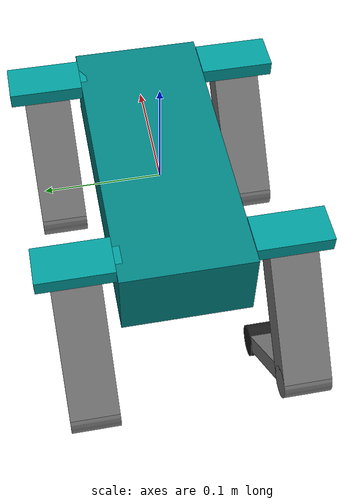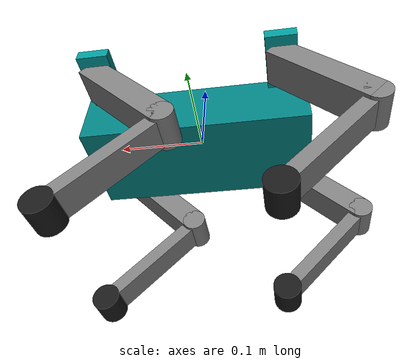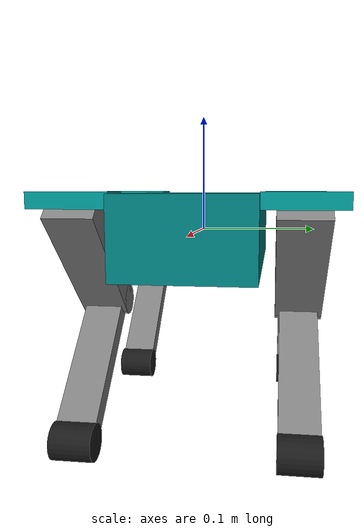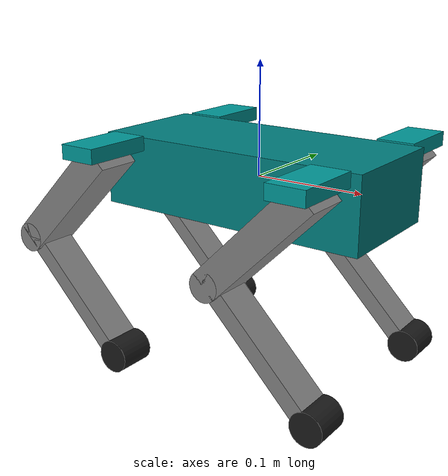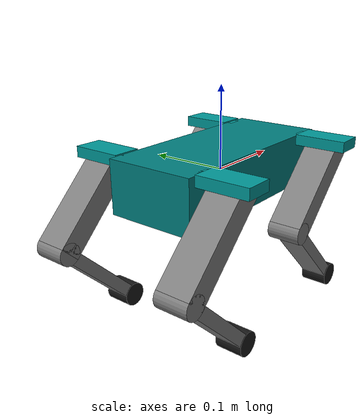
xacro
<?xml version="1.0"?>
<robot name="sparke" xmlns:xacro="http://ros.org/wiki/xacro">
	<!-- Constants -->
  <xacro:property name="base_length" value="0.254"/>
	<xacro:property name="base_width" value="0.11"/>
  <xacro:property name="base_height" value="0.065"/>

  <xacro:property name="shoulder_length" value="0.034"/>
	<xacro:property name="shoulder_width" value="0.0635"/>
  <xacro:property name="shoulder_height" value="0.013"/>

  <xacro:property name="leg_length" value="0.125"/>
	<xacro:property name="leg_width" value="0.040"/>
  <xacro:property name="leg_height" value="0.027"/>

  <xacro:property name="ankle_radius" value="0.0135"/>
	<xacro:property name="ankle_width" value="0.040"/>

  <xacro:property name="wrist_length" value="0.135"/>
	<xacro:property name="wrist_width" value="0.0325"/>
  <xacro:property name="wrist_height" value="0.015"/>

  <xacro:property name="foot_radius" value="0.015"/>
	<xacro:property name="foot_width" value="0.0325"/>

  <!-- Define intertial property macros  -->
  <xacro:macro name="box_inertia" params="m w h d">
    <inertial>
      <origin xyz="0 0 0" rpy="${pi/2} 0 ${pi/2}"/>
      <mass value="${m}"/>
      <inertia ixx="${(m/12) * (h*h + d*d)}" ixy="0.0" ixz="0.0" iyy="${(m/12) * (w*w + d*d)}" iyz="0.0" izz="${(m/12) * (w*w + h*h)}"/>
    </inertial>
  </xacro:macro>

  <xacro:macro name="cylinder_inertia" params="m r h">
    <inertial>
      <origin xyz="0 0 0" rpy="${pi/2} 0 0" />
      <mass value="${m}"/>
      <inertia ixx="${(m/12) * (3*r*r + h*h)}" ixy = "0" ixz = "0" iyy="${(m/12) * (3*r*r + h*h)}" iyz = "0" izz="${(m/2) * (r*r)}"/>
    </inertial>
  </xacro:macro>

  <xacro:macro name="sphere_inertia" params="m r">
    <inertial>
      <mass value="${m}"/>
      <inertia ixx="${(2/5) * m * (r*r)}" ixy="0.0" ixz="0.0" iyy="${(2/5) * m * (r*r)}" iyz="0.0" izz="${(2/5) * m * (r*r)}"/>
    </inertial>
  </xacro:macro>

	<!-- Robot Base -->
  <link name="base_link">
    <visual>
      <geometry>
        <box size="${base_length} ${base_width} ${base_height}"/>
      </geometry>
      <material name="Body">
        <color rgba="0 0.5 0.5 1"/>
      </material>
    </visual>

    <collision>
      <geometry>
        <box size="${base_length} ${base_width} ${base_height}"/>
      </geometry>
    </collision>

    <inertial>
      <origin xyz="0 0 0"/>
      <mass value="2.0"/>
      <inertia ixx="0.016833333333333332" ixy="0.0" ixz="0.0" iyy="0.04448333333333333" iyz="0.0" izz="0.055683333333333335"/>
    </inertial>
  </link>

	<!-- Robot Footprint -->
  <link name="base_footprint"/>

  <joint name="base_joint" type="fixed">
    <parent link="base_footprint"/>
    <child link="base_link"/>
    <origin xyz="0.0 0.0 0.0" rpy="0 0 0"/>
  </joint>

  <!-- Shoulders -->
  <xacro:macro name="shoulder" params="prefix x_reflect y_reflect x_pos y_pos z_pos">
    <link name="${prefix}_hip_link">
      <visual>
        <origin xyz="0 0 0" rpy="0 0 0"/>
        <geometry>
          <box size="${shoulder_length/2} ${(shoulder_width-leg_width)/2} 0.01"/>
        </geometry>
        <material name="hip">
          <color rgba="0 0.6 0.6 1.0"/>
        </material>
      </visual>

      <collision>
        <geometry>
          <box size="${shoulder_length/2} ${(shoulder_width-leg_width)/2} 0.01"/>
        </geometry>
      </collision>

      <inertial>
        <mass value="0.25"/>
        <inertia ixx="0.00048541666666666666" ixy="0.0" ixz="0.0" iyy="0.0006134166666666667" iyz="0.0" izz="0.0003946666666666667"/>
      </inertial>

    </link>

    <joint name="${prefix}_hip_joint" type="revolute">
      <parent link="base_link"/>
      <child link="${prefix}_hip_link"/>
      <origin xyz="${(x_pos) * x_reflect} ${(y_pos) * y_reflect} ${z_pos-0.005}" rpy="0 0 0"/>
      <axis xyz="1 0 0"/>
      <limit effort="1000000" lower="-3.141592653589793" upper="3.141592653589793" velocity="1.5"/>

    </joint>

    <link name="${prefix}_shoulder_link">
      <visual>
        <origin xyz="0 0 0" rpy="0 0 0"/>
        <geometry>
            <box size="${shoulder_length} ${shoulder_width} ${shoulder_height}"/>
        </geometry>
        <material name="Shoulder">
          <color rgba="0 0.6 0.6 0.0"/>
        </material>
      </visual>

      <collision>
        <geometry>
          <box size="${shoulder_length} ${shoulder_width} ${shoulder_height}"/>
        </geometry>
      </collision>

      <inertial>
        <mass value="0.1"/>
        <inertia ixx="0.00048541666666666666" ixy="0.0" ixz="0.0" iyy="0.0006134166666666667" iyz="0.0" izz="0.0003946666666666667"/>
      </inertial>

    </link>

    <joint name="${prefix}_shoulder_joint" type="revolute">
      <parent link="${prefix}_hip_link"/>
      <child link="${prefix}_shoulder_link"/>
      <origin xyz="0 ${(shoulder_width/2) * y_reflect} 0" rpy="0 0 0"/>
      <axis xyz="0 1 0"/>
      <limit effort="1000000" lower="-3.141592653589793" upper="3.141592653589793" velocity="1.5"/>

    </joint>

  </xacro:macro>

  <!-- Legs -->
  <xacro:macro name="leg" params="prefix x_reflect y_reflect x_pos y_pos z_pos">
    <link name="${prefix}_leg_link">
      <visual>
        <origin xyz="0 0 0" rpy="0 0 0"/>
        <geometry>
            <box size="${leg_length} ${leg_width} ${leg_height}"/>
        </geometry>
        <material name="Body">
          <color rgba="0.5 0.5 0.5 1.0"/>
        </material>
      </visual>

      <collision>
        <geometry>
          <box size="${leg_length} ${leg_width} ${leg_height}"/>
        </geometry>
      </collision>

      <inertial>
        <origin xyz="0 0 -0.0705"/>
        <mass value="0.125"/>
        <inertia ixx="0.0003873984375" ixy="0.0" ixz="0.0" iyy="0.0004040651041666667" iyz="0.0" izz="3.541666666666667e-05"/>
      </inertial>

    </link>

    <joint name="${prefix}_leg_joint" type="fixed">
      <parent link="${prefix}_shoulder_link"/>
      <child link="${prefix}_leg_link"/>
      <origin xyz="${(x_pos - (leg_length/25)) * x_reflect} ${(y_pos + (leg_width/2)) * y_reflect} ${z_pos - (leg_height/2)}" rpy="0 ${-pi/4} 0"/>
      <axis xyz="0 1 0"/>
    </joint>

    <link name="${prefix}_ankle_link">
      <visual>
        <origin xyz="0 0 0" rpy="0 ${pi/2} 0"/>
        <geometry>
            <cylinder radius="${ankle_radius}" length="${ankle_width}"/>
        </geometry>
        <material name="Body">
          <color rgba="0.5 0.5 0.5 1.0"/>
        </material>
      </visual>

      <collision>
        <origin xyz="0 0 0" rpy="0 ${pi/2} 0"/>
        <geometry>
          <cylinder radius="${ankle_radius}" length="${ankle_width}"/>
        </geometry>
      </collision>

      <inertial>
        <origin xyz="0 0 -0.06299999999999999"/>
        <mass value="0.125"/>
        <inertia ixx="0.00025854166666666663" ixy="0.0" ixz="0.0" iyy="0.00026934375" iyz="0.0" izz="2.0885416666666665e-05"/>
      </inertial>

    </link>

    <joint name="${prefix}_ankle_joint" type="revolute">
      <parent link="${prefix}_leg_link"/>
      <child link="${prefix}_ankle_link"/>
      <origin xyz="${-leg_length/2} 0 0" rpy="0 0 ${pi/2}"/>
      <axis xyz="1 0 0"/>
      <limit effort="1000000" lower="-3.141592653589793" upper="3.141592653589793" velocity="1.5"/>

    </joint>

  </xacro:macro>

  <!-- Wrists -->
  <xacro:macro name="wrist" params="prefix x_reflect y_reflect x_pos y_pos z_pos">
    <link name="${prefix}_wrist_link">
      <visual>
        <origin xyz="0 0 0" rpy="0 0 0"/>
        <geometry>
            <box size="${wrist_length} ${wrist_width} ${wrist_height}"/>
        </geometry>
        <material name="Gray">
          <color rgba="0.5 0.5 0.5 1.0"/>
        </material>
      </visual>

      <collision>
        <geometry>
          <box size="${wrist_length} ${wrist_width} ${wrist_height}"/>
        </geometry>
      </collision>

      <inertial>
        <mass value="0.1"/>
        <inertia ixx="0.00048541666666666666" ixy="0.0" ixz="0.0" iyy="0.0006134166666666667" iyz="0.0" izz="0.0003946666666666667"/>
      </inertial>
    </link>

    <joint name="${prefix}_wrist_joint" type="fixed">
      <parent link="${prefix}_ankle_link"/>
      <child link="${prefix}_wrist_link"/>
      <origin xyz="0 0 ${-wrist_length/2}" rpy="0 ${pi/2} ${pi/2}"/>
      <axis xyz="0 1 0"/>
    </joint>

    <link name="${prefix}_foot_link">
      <visual>
        <origin xyz="0 0 0" rpy="0 0 0"/>
        <geometry>
            <cylinder radius="${foot_radius}" length="${foot_width+0.001}"/>
        </geometry>
        <material name="black">
          <color rgba="0.1 0.1 0.1 1"/>
        </material>
      </visual>

      <collision>
        <geometry>
          <cylinder radius="${foot_radius}" length="${foot_width}"/>
        </geometry>
      </collision>

      <inertial>
        <mass value="0.1"/>
        <inertia ixx="0.00048541666666666666" ixy="0.0" ixz="0.0" iyy="0.0006134166666666667" iyz="0.0" izz="0.0003946666666666667"/>
      </inertial>
    </link>

    <joint name="${prefix}_foot_joint" type="fixed">
      <parent link="${prefix}_wrist_link"/>
      <child link="${prefix}_foot_link"/>
      <origin xyz="${wrist_length/2} 0 0" rpy="0 ${pi/2} ${pi/2}"/>
      <axis xyz="0 1 0"/>
    </joint>

    <gazebo reference="${prefix}_foot_link">
      <kp>10000000000.0</kp>
      <kd>100.0</kd>
      <mu1>0.8</mu1>
      <mu2>0.8</mu2>
      <minDepth>0.05</minDepth>
      <material>Gazebo/FlatBlack</material>
    </gazebo>

  </xacro:macro>

  <xacro:shoulder prefix="fl" x_reflect="1" y_reflect="1" x_pos="0.101" y_pos="${base_width/2}" z_pos="${base_height/2}"/>
  <xacro:shoulder prefix="fr" x_reflect="1" y_reflect="-1" x_pos="0.101" y_pos="${base_width/2}" z_pos="${base_height/2}"/>
  <xacro:shoulder prefix="br" x_reflect="-1" y_reflect="-1" x_pos="0.101" y_pos="${base_width/2}" z_pos="${base_height/2}"/>
  <xacro:shoulder prefix="bl" x_reflect="-1" y_reflect="1" x_pos="0.101" y_pos="${base_width/2}" z_pos="${base_height/2}"/>

  <xacro:leg prefix="fl" x_reflect="1" y_reflect="1" x_pos="${-(leg_length/2)+(shoulder_length*0.9)}" y_pos="${-leg_width/2}" z_pos="${-(leg_length/4)-(shoulder_height/4)}"/>
  <xacro:leg prefix="fr" x_reflect="1" y_reflect="1" x_pos="${-(leg_length/2)+(shoulder_length*0.9)}" y_pos="${-leg_width/2}" z_pos="${-(leg_length/4)-(shoulder_height/4)}"/>
  <xacro:leg prefix="br" x_reflect="1" y_reflect="1" x_pos="${-(leg_length/2)+(shoulder_length*0.9)}" y_pos="${-leg_width/2}" z_pos="${-(leg_length/4)-(shoulder_height/4)}"/>
  <xacro:leg prefix="bl" x_reflect="1" y_reflect="1" x_pos="${-(leg_length/2)+(shoulder_length*0.9)}" y_pos="${-leg_width/2}" z_pos="${-(leg_length/4)-(shoulder_height/4)}"/>

  <xacro:wrist prefix="fl" x_reflect="1" y_reflect="1" x_pos="0" y_pos="0" z_pos="0"/>
  <xacro:wrist prefix="fr" x_reflect="1" y_reflect="1" x_pos="0" y_pos="0" z_pos="0"/>
  <xacro:wrist prefix="br" x_reflect="1" y_reflect="1" x_pos="0" y_pos="0" z_pos="0"/>
  <xacro:wrist prefix="bl" x_reflect="1" y_reflect="1" x_pos="0" y_pos="0" z_pos="0"/>

  <gazebo>
      <plugin name="gazebo_ros2_control" filename="libgazebo_ros2_control.so">
         <parameters>$(find sparke_description)/params/simple_controller_effort_test.yaml</parameters>
      </plugin>
   </gazebo>

  <ros2_control name="fl_ankle_joint" type="system">
    <hardware>
      <plugin>gazebo_ros2_control/GazeboSystem</plugin>
    </hardware>
    <joint name="fl_ankle_joint">
      <command_interface name="effort"/>
      <state_interface name="position"/>
      <state_interface name="velocity"/>
    </joint>
  </ros2_control>
  <ros2_control name="fr_ankle_joint" type="system">
    <hardware>
      <plugin>gazebo_ros2_control/GazeboSystem</plugin>
    </hardware>
    <joint name="fr_ankle_joint">
      <command_interface name="effort"/>
      <state_interface name="position"/>
      <state_interface name="velocity"/>
    </joint>
  </ros2_control>
  <ros2_control name="bl_ankle_joint" type="system">
    <hardware>
      <plugin>gazebo_ros2_control/GazeboSystem</plugin>
    </hardware>
    <joint name="bl_ankle_joint">
      <command_interface name="effort"/>
      <state_interface name="position"/>
      <state_interface name="velocity"/>
    </joint>
  </ros2_control>
  <ros2_control name="br_ankle_joint" type="system">
    <hardware>
      <plugin>gazebo_ros2_control/GazeboSystem</plugin>
    </hardware>
    <joint name="br_ankle_joint">
      <command_interface name="effort"/>
      <state_interface name="position"/>
      <state_interface name="velocity"/>
    </joint>
  </ros2_control>

  <ros2_control name="fl_shoulder_joint" type="system">
    <hardware>
      <plugin>gazebo_ros2_control/GazeboSystem</plugin>
    </hardware>
    <joint name="fl_shoulder_joint">
      <command_interface name="effort"/>
      <state_interface name="position"/>
      <state_interface name="velocity"/>
    </joint>
  </ros2_control>
  <ros2_control name="fr_shoulder_joint" type="system">
    <hardware>
      <plugin>gazebo_ros2_control/GazeboSystem</plugin>
    </hardware>
    <joint name="fr_shoulder_joint">
      <command_interface name="effort"/>
      <state_interface name="position"/>
      <state_interface name="velocity"/>
    </joint>
  </ros2_control>
  <ros2_control name="bl_shoulder_joint" type="system">
    <hardware>
      <plugin>gazebo_ros2_control/GazeboSystem</plugin>
    </hardware>
    <joint name="bl_shoulder_joint">
      <command_interface name="effort"/>
      <state_interface name="position"/>
      <state_interface name="velocity"/>
    </joint>
  </ros2_control>
  <ros2_control name="br_shoulder_joint" type="system">
    <hardware>
      <plugin>gazebo_ros2_control/GazeboSystem</plugin>
    </hardware>
    <joint name="br_shoulder_joint">
      <command_interface name="effort"/>
      <state_interface name="position"/>
      <state_interface name="velocity"/>
    </joint>
  </ros2_control>

  <ros2_control name="fl_hip_joint" type="system">
    <hardware>
      <plugin>gazebo_ros2_control/GazeboSystem</plugin>
    </hardware>
    <joint name="fl_hip_joint">
      <command_interface name="effort"/>
      <state_interface name="position"/>
      <state_interface name="velocity"/>
    </joint>
  </ros2_control>
  <ros2_control name="fr_hip_joint" type="system">
    <hardware>
      <plugin>gazebo_ros2_control/GazeboSystem</plugin>
    </hardware>
    <joint name="fr_hip_joint">
      <command_interface name="effort"/>
      <state_interface name="position"/>
      <state_interface name="velocity"/>
    </joint>
  </ros2_control>
  <ros2_control name="bl_hip_joint" type="system">
    <hardware>
      <plugin>gazebo_ros2_control/GazeboSystem</plugin>
    </hardware>
    <joint name="bl_hip_joint">
      <command_interface name="effort"/>
      <state_interface name="position"/>
      <state_interface name="velocity"/>
    </joint>
  </ros2_control>
  <ros2_control name="br_hip_joint" type="system">
    <hardware>
      <plugin>gazebo_ros2_control/GazeboSystem</plugin>
    </hardware>
    <joint name="br_hip_joint">
      <command_interface name="effort"/>
      <state_interface name="position"/>
      <state_interface name="velocity"/>
    </joint>
  </ros2_control>

</robot>
